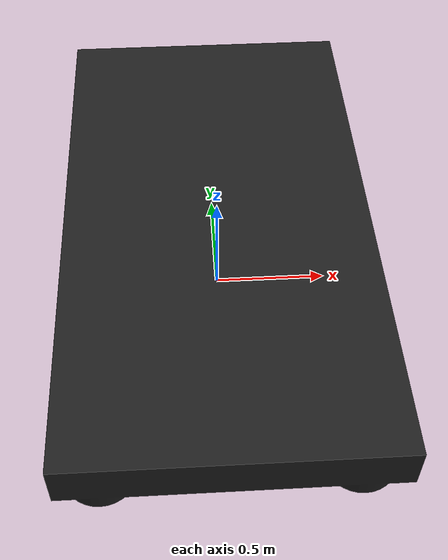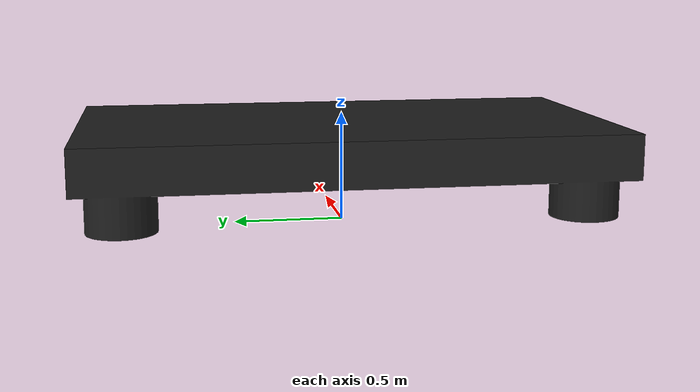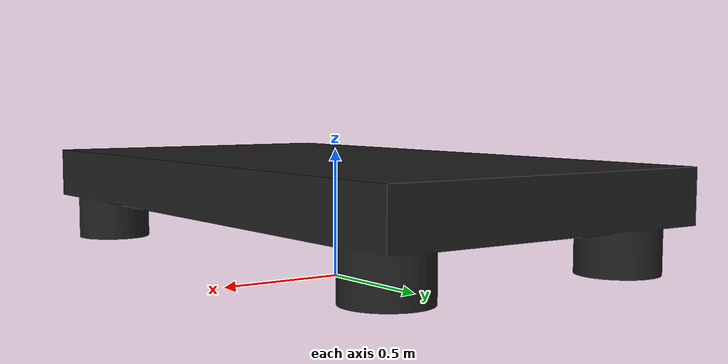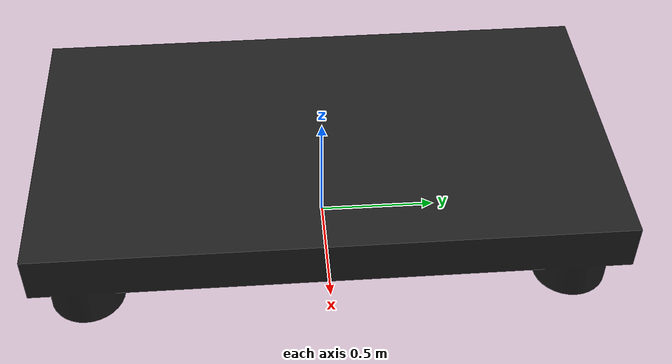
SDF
<?xml version="1.0" ?>
<sdf version="1.5">
  <model name="black_table">
    <link name="link">
			<gravity>1</gravity>
      <pose>0 0 0 0 0 0</pose>
      <collision name="collision">
        <geometry>
          <mesh>
						<uri>model://black_table/meshes/table.dae</uri>
						<scale>0.15 0.15 0.1</scale>
					</mesh>
        </geometry>
      </collision>
      <visual name="visual">
        <geometry>
          <mesh>
						<uri>model://black_table/meshes/table.dae</uri>
						<scale>0.15 0.15 0.1</scale>
					</mesh>
        </geometry>
        <material>
          <script>
            <uri>file://media/materials/scripts/gazebo.material</uri>
	    <name>Gazebo/Black</name>
          </script>
        </material>
      </visual>
    </link>
  </model>
</sdf>
